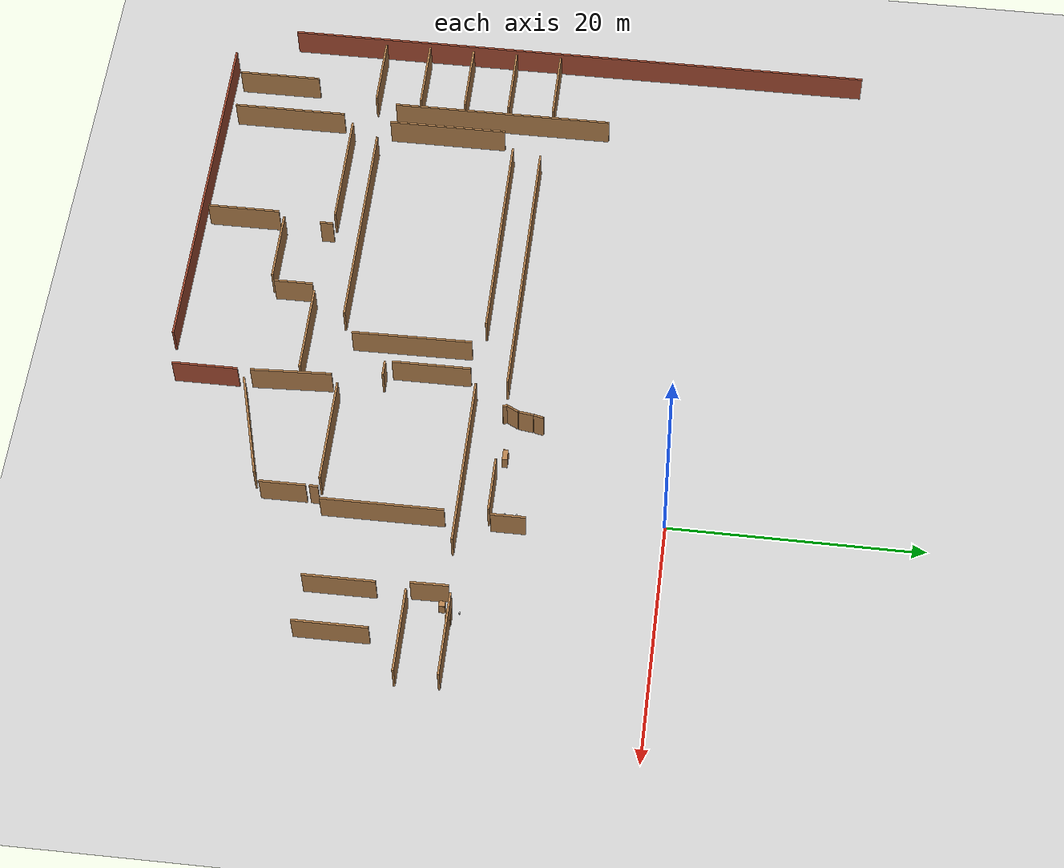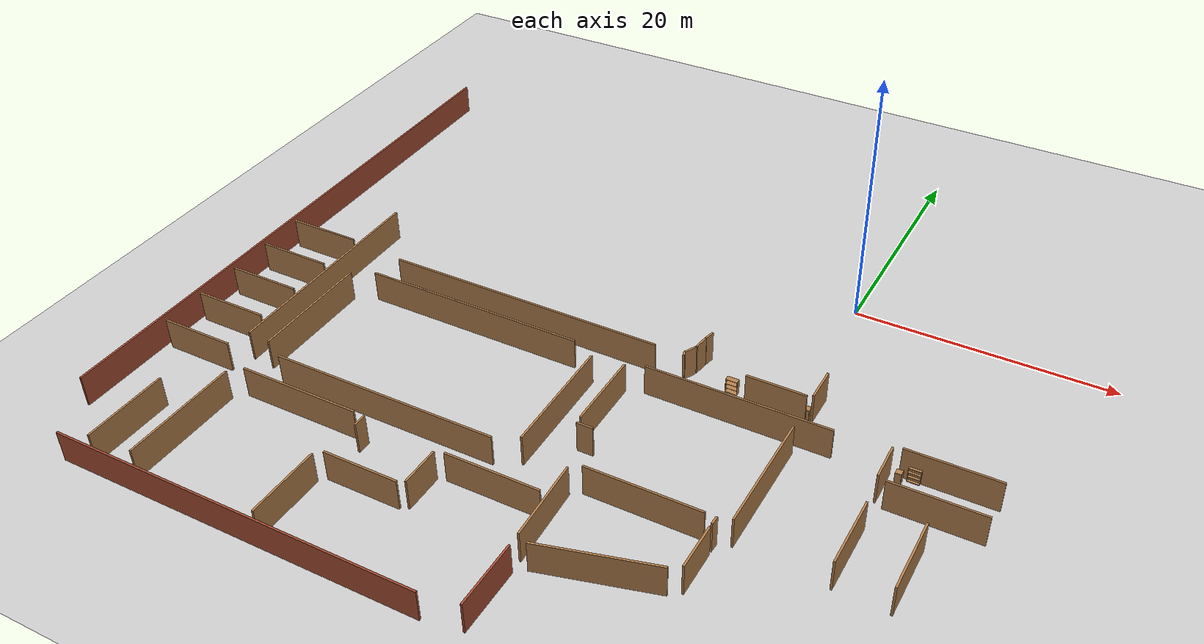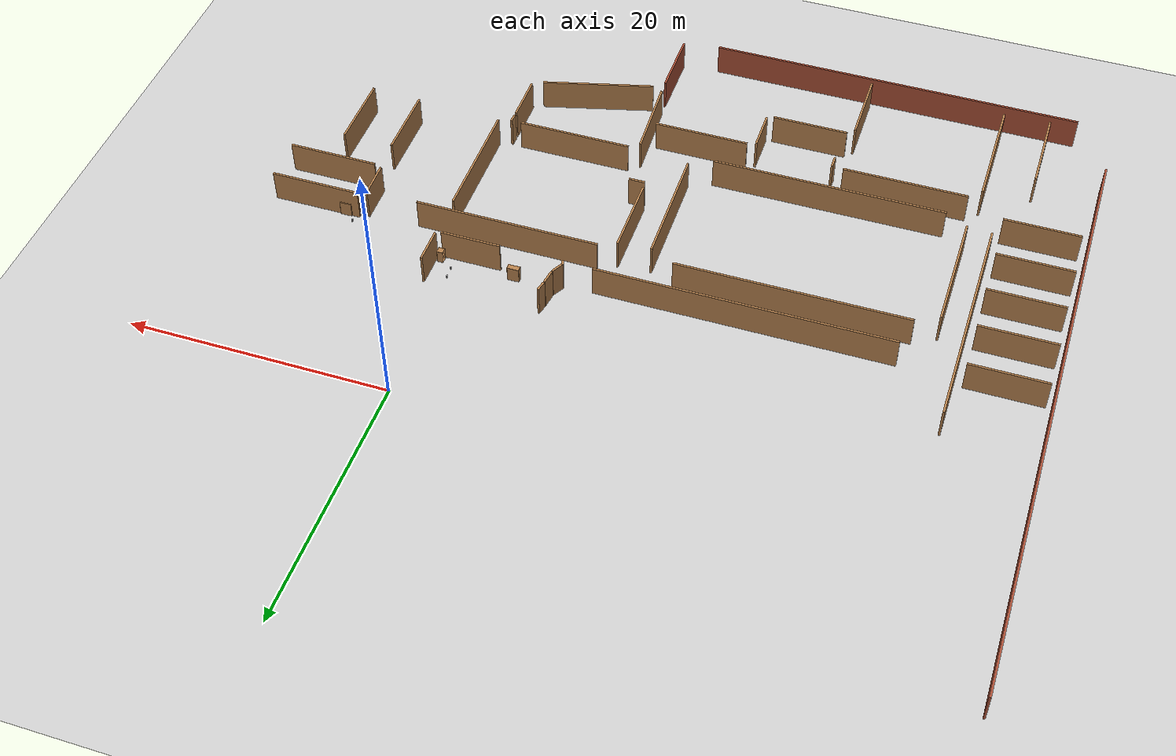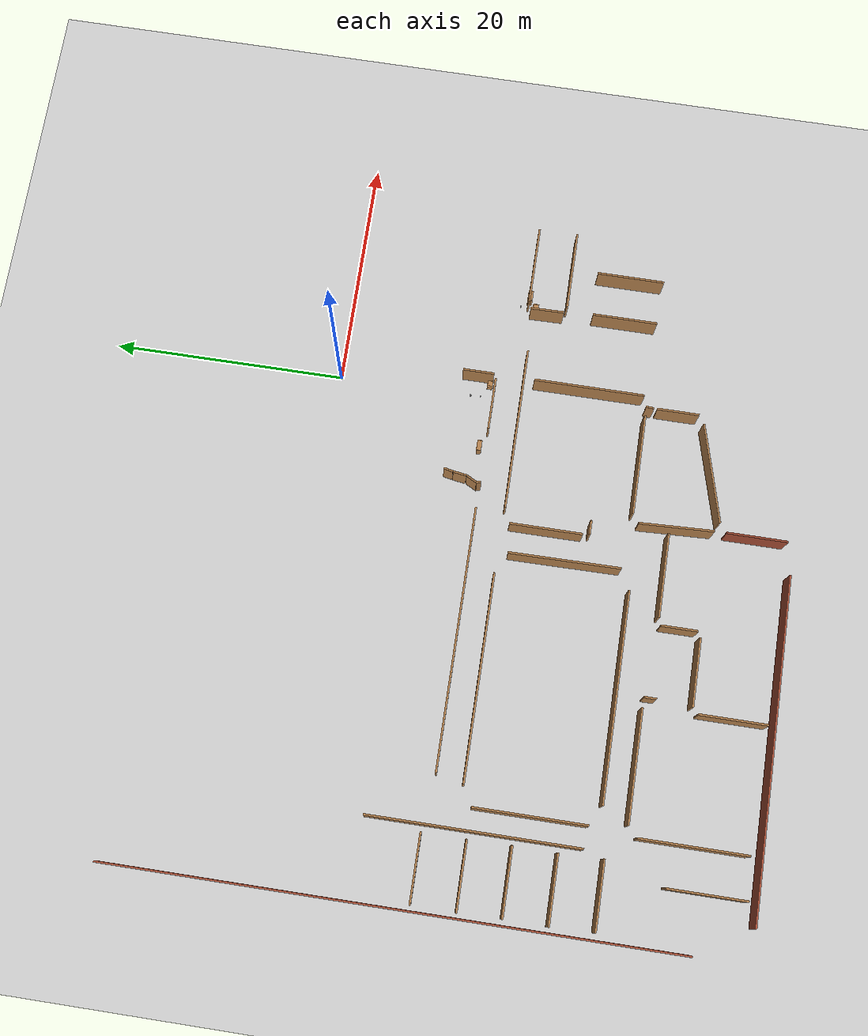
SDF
<sdf version="1.6">
 <world name="default">
  <model name="ground_plane">
   <static>1</static>
   <link name="link">
    <collision name="collision">
     <geometry><plane><normal>0 0 1</normal><size>100 100</size></plane></geometry>
     <surface><friction><ode><mu>100</mu><mu2>50</mu2></ode></friction></surface>
    </collision>
    <visual name="visual">
     <cast_shadows>0</cast_shadows>
     <geometry><plane><normal>0 0 1</normal><size>100 100</size></plane></geometry>
     <material>
      <script><uri>file://media/materials/scripts/gazebo.material</uri><name>Gazebo/Grey</name></script>
     </material>
    </visual>
   </link>
  </model>
  <model name="floorPlan">
   <pose>6.7155 -5.3556 0 0 -0 0</pose>
   <link name="Wall_127">
    <collision name="Wall_127_Collision">
     <geometry><box><size>9.58 0.15 2.5</size></box></geometry>
     <pose>0 0 1.25 0 -0 0</pose>
    </collision>
    <visual name="Wall_127_Visual">
     <pose>0 0 1.25 0 -0 0</pose>
     <geometry><box><size>9.58 0.15 2.5</size></box></geometry>
     <material>
      <script><uri>file://media/materials/scripts/gazebo.material</uri><name>Gazebo/Wood</name></script>
      <ambient>1 1 1 1</ambient>
     </material>
     <meta><layer>0</layer></meta>
    </visual>
    <pose>-5.05877 -16.1593 0 0 0 -1.5708</pose>
   </link>
   <link name="Wall_129">
    <collision name="Wall_129_Collision">
     <geometry><box><size>14.16 0.15 2.5</size></box></geometry>
     <pose>0 0 1.25 0 -0 0</pose>
    </collision>
    <visual name="Wall_129_Visual">
     <pose>0 0 1.25 0 -0 0</pose>
     <geometry><box><size>14.16 0.15 2.5</size></box></geometry>
     <material>
      <script><uri>file://media/materials/scripts/gazebo.material</uri><name>Gazebo/Wood</name></script>
      <ambient>1 1 1 1</ambient>
     </material>
     <meta><layer>0</layer></meta>
    </visual>
    <pose>-9.61757 -10.458 0 0 -0 3.14159</pose>
   </link>
   <link name="Wall_130">
    <collision name="Wall_130_Collision">
     <geometry><box><size>6.25 0.15 2.5</size></box></geometry>
     <pose>0 0 1.25 0 -0 0</pose>
    </collision>
    <visual name="Wall_130_Visual">
     <pose>0 0 1.25 0 -0 0</pose>
     <geometry><box><size>6.25 0.15 2.5</size></box></geometry>
     <material>
      <script><uri>file://media/materials/scripts/gazebo.material</uri><name>Gazebo/Wood</name></script>
      <ambient>1 1 1 1</ambient>
     </material>
     <meta><layer>0</layer></meta>
    </visual>
    <pose>-18.0426 -14.133 0 0 0 -1.5708</pose>
   </link>
   <link name="Wall_131">
    <collision name="Wall_131_Collision">
     <geometry><box><size>1.25 0.15 2.5</size></box></geometry>
     <pose>0 0 1.25 0 -0 0</pose>
    </collision>
    <visual name="Wall_131_Visual">
     <pose>0 0 1.25 0 -0 0</pose>
     <geometry><box><size>1.25 0.15 2.5</size></box></geometry>
     <material>
      <script><uri>file://media/materials/scripts/gazebo.material</uri><name>Gazebo/Wood</name></script>
      <ambient>1 1 1 1</ambient>
     </material>
     <meta><layer>0</layer></meta>
    </visual>
    <pose>-17.3676 -17.808 0 0 -0 0</pose>
   </link>
   <link name="Wall_133">
    <collision name="Wall_133_Collision">
     <geometry><box><size>8.75 0.15 2.5</size></box></geometry>
     <pose>0 0 1.25 0 -0 0</pose>
    </collision>
    <visual name="Wall_133_Visual">
     <pose>0 0 1.25 0 -0 0</pose>
     <geometry><box><size>8.75 0.15 2.5</size></box></geometry>
     <material>
      <script><uri>file://media/materials/scripts/gazebo.material</uri><name>Gazebo/Wood</name></script>
      <ambient>1 1 1 1</ambient>
     </material>
     <meta><layer>0</layer></meta>
    </visual>
    <pose>-11.2193 -21.215 0 0 -0 0</pose>
   </link>
   <link name="Wall_134">
    <collision name="Wall_134_Collision">
     <geometry><box><size>0.69 0.15 2.5</size></box></geometry>
     <pose>0 0 1.25 0 -0 0</pose>
    </collision>
    <visual name="Wall_134_Visual">
     <pose>0 0 1.25 0 -0 0</pose>
     <geometry><box><size>0.69 0.15 2.5</size></box></geometry>
     <material>
      <script><uri>file://media/materials/scripts/gazebo.material</uri><name>Gazebo/Wood</name></script>
      <ambient>1 1 1 1</ambient>
     </material>
     <meta><layer>0</layer></meta>
    </visual>
    <pose>-6.06127 -21.5509 0 0 0 -1.62113</pose>
   </link>
   <link name="Wall_137">
    <collision name="Wall_137_Collision">
     <geometry><box><size>6.42 0.15 2.5</size></box></geometry>
     <pose>0 0 1.25 0 -0 0</pose>
    </collision>
    <visual name="Wall_137_Visual">
     <pose>0 0 1.25 0 -0 0</pose>
     <geometry><box><size>6.42 0.15 2.5</size></box></geometry>
     <material>
      <script><uri>file://media/materials/scripts/gazebo.material</uri><name>Gazebo/Wood</name></script>
      <ambient>1 1 1 1</ambient>
     </material>
     <meta><layer>0</layer></meta>
    </visual>
    <pose>-16.2349 -24.9897 0 0 0 -1.52859</pose>
   </link>
   <link name="Wall_139">
    <collision name="Wall_139_Collision">
     <geometry><box><size>7.29 0.15 2.5</size></box></geometry>
     <pose>0 0 1.25 0 -0 0</pose>
    </collision>
    <visual name="Wall_139_Visual">
     <pose>0 0 1.25 0 -0 0</pose>
     <geometry><box><size>7.29 0.15 2.5</size></box></geometry>
     <material>
      <script><uri>file://media/materials/scripts/gazebo.material</uri><name>Gazebo/Wood</name></script>
      <ambient>1 1 1 1</ambient>
     </material>
     <meta><layer>0</layer></meta>
    </visual>
    <pose>-20.4877 -24.4086 0 0 -0 3.14159</pose>
   </link>
   <link name="Wall_140">
    <collision name="Wall_140_Collision">
     <geometry><box><size>3.12 0.15 2.5</size></box></geometry>
     <pose>0 0 1.25 0 -0 0</pose>
    </collision>
    <visual name="Wall_140_Visual">
     <pose>0 0 1.25 0 -0 0</pose>
     <geometry><box><size>3.12 0.15 2.5</size></box></geometry>
     <material>
      <script><uri>file://media/materials/scripts/gazebo.material</uri><name>Gazebo/Wood</name></script>
      <ambient>1 1 1 1</ambient>
     </material>
     <meta><layer>0</layer></meta>
    </visual>
    <pose>-24.7877 -26.2086 0 0 0 -1.5708</pose>
   </link>
   <link name="Wall_141">
    <collision name="Wall_141_Collision">
     <geometry><box><size>5.83 0.15 2.5</size></box></geometry>
     <pose>0 0 1.25 0 -0 0</pose>
    </collision>
    <visual name="Wall_141_Visual">
     <pose>0 0 1.25 0 -0 0</pose>
     <geometry><box><size>5.83 0.15 2.5</size></box></geometry>
     <material>
      <script><uri>file://media/materials/scripts/gazebo.material</uri><name>Gazebo/Wood</name></script>
      <ambient>1 1 1 1</ambient>
     </material>
     <meta><layer>0</layer></meta>
    </visual>
    <pose>-28.2127 -28.0086 0 0 -0 3.14159</pose>
   </link>
   <link name="Wall_142">
    <collision name="Wall_142_Collision">
     <geometry><box><size>5.83 0.15 2.5</size></box></geometry>
     <pose>0 0 1.25 0 -0 0</pose>
    </collision>
    <visual name="Wall_142_Visual">
     <pose>0 0 1.25 0 -0 0</pose>
     <geometry><box><size>5.83 0.15 2.5</size></box></geometry>
     <material>
      <script><uri>file://media/materials/scripts/gazebo.material</uri><name>Gazebo/Wood</name></script>
      <ambient>1 1 1 1</ambient>
     </material>
     <meta><layer>0</layer></meta>
    </visual>
    <pose>-31.6377 -31.4336 0 0 0 -1.5708</pose>
   </link>
   <link name="Wall_144">
    <collision name="Wall_144_Collision">
     <geometry><box><size>1.04 0.15 2.5</size></box></geometry>
     <pose>0 0 1.25 0 -0 0</pose>
    </collision>
    <visual name="Wall_144_Visual">
     <pose>0 0 1.25 0 -0 0</pose>
     <geometry><box><size>1.04 0.15 2.5</size></box></geometry>
     <material>
      <script><uri>file://media/materials/scripts/gazebo.material</uri><name>Gazebo/Wood</name></script>
      <ambient>1 1 1 1</ambient>
     </material>
     <meta><layer>0</layer></meta>
    </visual>
    <pose>-30.9008 -24.4847 0 0 -0 1.5708</pose>
   </link>
   <link name="Wall_146">
    <collision name="Wall_146_Collision">
     <geometry><box><size>9.58 0.15 2.5</size></box></geometry>
     <pose>0 0 1.25 0 -0 0</pose>
    </collision>
    <visual name="Wall_146_Visual">
     <pose>0 0 1.25 0 -0 0</pose>
     <geometry><box><size>9.58 0.15 2.5</size></box></geometry>
     <material>
      <script><uri>file://media/materials/scripts/gazebo.material</uri><name>Gazebo/Wood</name></script>
      <ambient>1 1 1 1</ambient>
     </material>
     <meta><layer>0</layer></meta>
    </visual>
    <pose>-36.5758 -23.9347 0 0 -0 3.14159</pose>
   </link>
   <link name="Wall_147">
    <collision name="Wall_147_Collision">
     <geometry><box><size>9.16 0.15 2.5</size></box></geometry>
     <pose>0 0 1.25 0 -0 0</pose>
    </collision>
    <visual name="Wall_147_Visual">
     <pose>0 0 1.25 0 -0 0</pose>
     <geometry><box><size>9.16 0.15 2.5</size></box></geometry>
     <material>
      <script><uri>file://media/materials/scripts/gazebo.material</uri><name>Gazebo/Wood</name></script>
      <ambient>1 1 1 1</ambient>
     </material>
     <meta><layer>0</layer></meta>
    </visual>
    <pose>-42.2508 -29.3597 0 0 0 -1.5708</pose>
   </link>
   <link name="Wall_149">
    <collision name="Wall_149_Collision">
     <geometry><box><size>6.66 0.15 2.5</size></box></geometry>
     <pose>0 0 1.25 0 -0 0</pose>
    </collision>
    <visual name="Wall_149_Visual">
     <pose>0 0 1.25 0 -0 0</pose>
     <geometry><box><size>6.66 0.15 2.5</size></box></geometry>
     <material>
      <script><uri>file://media/materials/scripts/gazebo.material</uri><name>Gazebo/Wood</name></script>
      <ambient>1 1 1 1</ambient>
     </material>
     <meta><layer>0</layer></meta>
    </visual>
    <pose>-45.7877 -30.8032 0 0 0 -1.5708</pose>
   </link>
   <link name="Wall_151">
    <collision name="Wall_151_Collision">
     <geometry><box><size>5.83 0.15 2.5</size></box></geometry>
     <pose>0 0 1.25 0 -0 0</pose>
    </collision>
    <visual name="Wall_151_Visual">
     <pose>0 0 1.25 0 -0 0</pose>
     <geometry><box><size>5.83 0.15 2.5</size></box></geometry>
     <material>
      <script><uri>file://media/materials/scripts/gazebo.material</uri><name>Gazebo/Wood</name></script>
      <ambient>1 1 1 1</ambient>
     </material>
     <meta><layer>0</layer></meta>
    </visual>
    <pose>-47.1627 -22.3564 0 0 -0 0</pose>
   </link>
   <link name="Wall_152">
    <collision name="Wall_152_Collision">
     <geometry><box><size>17.91 0.15 2.5</size></box></geometry>
     <pose>0 0 1.25 0 -0 0</pose>
    </collision>
    <visual name="Wall_152_Visual">
     <pose>0 0 1.25 0 -0 0</pose>
     <geometry><box><size>17.91 0.15 2.5</size></box></geometry>
     <material>
      <script><uri>file://media/materials/scripts/gazebo.material</uri><name>Gazebo/Wood</name></script>
      <ambient>1 1 1 1</ambient>
     </material>
     <meta><layer>0</layer></meta>
    </visual>
    <pose>-43.7377 -11.6814 0 0 -0 1.5708</pose>
   </link>
   <link name="Wall_154">
    <collision name="Wall_154_Collision">
     <geometry><box><size>9.58 0.15 2.5</size></box></geometry>
     <pose>0 0 1.25 0 -0 0</pose>
    </collision>
    <visual name="Wall_154_Visual">
     <pose>0 0 1.25 0 -0 0</pose>
     <geometry><box><size>9.58 0.15 2.5</size></box></geometry>
     <material>
      <script><uri>file://media/materials/scripts/gazebo.material</uri><name>Gazebo/Wood</name></script>
      <ambient>1 1 1 1</ambient>
     </material>
     <meta><layer>0</layer></meta>
    </visual>
    <pose>-20.5182 -16.0314 0 0 0 -1.5616</pose>
   </link>
   <link name="Wall_155">
    <collision name="Wall_155_Collision">
     <geometry><box><size>17.91 0.15 2.5</size></box></geometry>
     <pose>0 0 1.25 0 -0 0</pose>
    </collision>
    <visual name="Wall_155_Visual">
     <pose>0 0 1.25 0 -0 0</pose>
     <geometry><box><size>17.91 0.15 2.5</size></box></geometry>
     <material>
      <script><uri>file://media/materials/scripts/gazebo.material</uri><name>Gazebo/Wood</name></script>
      <ambient>1 1 1 1</ambient>
     </material>
     <meta><layer>0</layer></meta>
    </visual>
    <pose>-31.1758 -21.7064 0 0 -0 3.14159</pose>
   </link>
   <link name="Wall_158">
    <collision name="Wall_158_Collision">
     <geometry><box><size>9.58 0.15 2.5</size></box></geometry>
     <pose>0 0 1.25 0 -0 0</pose>
    </collision>
    <visual name="Wall_158_Visual">
     <pose>0 0 1.25 0 -0 0</pose>
     <geometry><box><size>9.58 0.15 2.5</size></box></geometry>
     <material>
      <script><uri>file://media/materials/scripts/gazebo.material</uri><name>Gazebo/Wood</name></script>
      <ambient>1 1 1 1</ambient>
     </material>
     <meta><layer>0</layer></meta>
    </visual>
    <pose>-41.8508 -16.0314 0 0 -0 1.5708</pose>
   </link>
   <link name="Wall_159">
    <collision name="Wall_159_Collision">
     <geometry><box><size>17.7 0.15 2.5</size></box></geometry>
     <pose>0 0 1.25 0 -0 0</pose>
    </collision>
    <visual name="Wall_159_Visual">
     <pose>0 0 1.25 0 -0 0</pose>
     <geometry><box><size>17.7 0.15 2.5</size></box></geometry>
     <material>
      <script><uri>file://media/materials/scripts/gazebo.material</uri><name>Gazebo/Wood</name></script>
      <ambient>1 1 1 1</ambient>
     </material>
     <meta><layer>0</layer></meta>
    </visual>
    <pose>-31.3008 -10.3564 0 0 -0 0</pose>
   </link>
   <link name="Wall_163">
    <collision name="Wall_163_Collision">
     <geometry><box><size>4.58 0.15 2.5</size></box></geometry>
     <pose>0 0 1.25 0 -0 0</pose>
    </collision>
    <visual name="Wall_163_Visual">
     <pose>0 0 1.25 0 -0 0</pose>
     <geometry><box><size>4.58 0.15 2.5</size></box></geometry>
     <material>
      <script><uri>file://media/materials/scripts/gazebo.material</uri><name>Gazebo/Wood</name></script>
      <ambient>1 1 1 1</ambient>
     </material>
     <meta><layer>0</layer></meta>
    </visual>
    <pose>-7.72942 -8.04986 0 0 -0 0</pose>
   </link>
   <link name="Wall_164">
    <collision name="Wall_164_Collision">
     <geometry><box><size>2.71 0.15 2.5</size></box></geometry>
     <pose>0 0 1.25 0 -0 0</pose>
    </collision>
    <visual name="Wall_164_Visual">
     <pose>0 0 1.25 0 -0 0</pose>
     <geometry><box><size>2.71 0.15 2.5</size></box></geometry>
     <material>
      <script><uri>file://media/materials/scripts/gazebo.material</uri><name>Gazebo/Wood</name></script>
      <ambient>1 1 1 1</ambient>
     </material>
     <meta><layer>0</layer></meta>
    </visual>
    <pose>-5.05442 -6.49986 0 0 -0 1.5708</pose>
   </link>
   <link name="Wall_182">
    <collision name="Wall_182_Collision">
     <geometry><box><size>22.49 0.15 2.5</size></box></geometry>
     <pose>0 0 1.25 0 -0 0</pose>
    </collision>
    <visual name="Wall_182_Visual">
     <pose>0 0 1.25 0 -0 0</pose>
     <geometry><box><size>22.49 0.15 2.5</size></box></geometry>
     <material>
      <script><uri>file://media/materials/scripts/gazebo.material</uri><name>Gazebo/Wood</name></script>
      <ambient>1 1 1 1</ambient>
     </material>
     <meta><layer>0</layer></meta>
    </visual>
    <pose>-28.3707 -8.0129 0 0 -0 3.14159</pose>
   </link>
   <link name="Wall_192">
    <collision name="Wall_192_Collision">
     <geometry><box><size>0.81 0.15 2.5</size></box></geometry>
     <pose>0 0 1.25 0 -0 0</pose>
    </collision>
    <visual name="Wall_192_Visual">
     <pose>0 0 1.25 0 -0 0</pose>
     <geometry><box><size>0.81 0.15 2.5</size></box></geometry>
     <material>
      <script><uri>file://media/materials/scripts/gazebo.material</uri><name>Gazebo/Wood</name></script>
      <ambient>1 1 1 1</ambient>
     </material>
     <meta><layer>0</layer></meta>
    </visual>
    <pose>-14.1979 -5.2129 0 0 0 -1.78486</pose>
   </link>
   <link name="Wall_193">
    <collision name="Wall_193_Collision">
     <geometry><box><size>1.15 0.15 2.5</size></box></geometry>
     <pose>0 0 1.25 0 -0 0</pose>
    </collision>
    <visual name="Wall_193_Visual">
     <pose>0 0 1.25 0 -0 0</pose>
     <geometry><box><size>1.15 0.15 2.5</size></box></geometry>
     <material>
      <script><uri>file://media/materials/scripts/gazebo.material</uri><name>Gazebo/Wood</name></script>
      <ambient>1 1 1 1</ambient>
     </material>
     <meta><layer>0</layer></meta>
    </visual>
    <pose>-14.3718 -6.2216 0 0 0 -1.71269</pose>
   </link>
   <link name="Wall_194">
    <collision name="Wall_194_Collision">
     <geometry><box><size>1.01 0.15 2.5</size></box></geometry>
     <pose>0 0 1.25 0 -0 0</pose>
    </collision>
    <visual name="Wall_194_Visual">
     <pose>0 0 1.25 0 -0 0</pose>
     <geometry><box><size>1.01 0.15 2.5</size></box></geometry>
     <material>
      <script><uri>file://media/materials/scripts/gazebo.material</uri><name>Gazebo/Wood</name></script>
      <ambient>1 1 1 1</ambient>
     </material>
     <meta><layer>0</layer></meta>
    </visual>
    <pose>-14.7022 -7.29986 0 0 0 -2.04915</pose>
   </link>
   <link name="Wall_195">
    <collision name="Wall_195_Collision">
     <geometry><box><size>0.4 0.15 2.5</size></box></geometry>
     <pose>0 0 1.25 0 -0 0</pose>
    </collision>
    <visual name="Wall_195_Visual">
     <pose>0 0 1.25 0 -0 0</pose>
     <geometry><box><size>0.4 0.15 2.5</size></box></geometry>
     <material>
      <script><uri>file://media/materials/scripts/gazebo.material</uri><name>Gazebo/Wood</name></script>
      <ambient>1 1 1 1</ambient>
     </material>
     <meta><layer>0</layer></meta>
    </visual>
    <pose>-14.8935 -7.92595 0 0 0 -1.24905</pose>
   </link>
   <link name="Wall_229">
    <collision name="Wall_229_Collision">
     <geometry><box><size>5.62 0.15 2.5</size></box></geometry>
     <pose>0 0 1.25 0 -0 0</pose>
    </collision>
    <visual name="Wall_229_Visual">
     <pose>0 0 1.25 0 -0 0</pose>
     <geometry><box><size>5.62 0.15 2.5</size></box></geometry>
     <material>
      <script><uri>file://media/materials/scripts/gazebo.material</uri><name>Gazebo/Wood</name></script>
      <ambient>1 1 1 1</ambient>
     </material>
     <meta><layer>0</layer></meta>
    </visual>
    <pose>1.67781 -18.4351 0 0 0 -1.5708</pose>
   </link>
   <link name="Wall_234">
    <collision name="Wall_234_Collision">
     <geometry><box><size>2.92 0.15 2.5</size></box></geometry>
     <pose>0 0 1.25 0 -0 0</pose>
    </collision>
    <visual name="Wall_234_Visual">
     <pose>0 0 1.25 0 -0 0</pose>
     <geometry><box><size>2.92 0.15 2.5</size></box></geometry>
     <material>
      <script><uri>file://media/materials/scripts/gazebo.material</uri><name>Gazebo/Wood</name></script>
      <ambient>1 1 1 1</ambient>
     </material>
     <meta><layer>0</layer></meta>
    </visual>
    <pose>1.44911 -11.6186 0 0 0 -1.55714</pose>
   </link>
   <link name="Wall_235">
    <collision name="Wall_235_Collision">
     <geometry><box><size>6.87 0.15 2.5</size></box></geometry>
     <pose>0 0 1.25 0 -0 0</pose>
    </collision>
    <visual name="Wall_235_Visual">
     <pose>0 0 1.25 0 -0 0</pose>
     <geometry><box><size>6.87 0.15 2.5</size></box></geometry>
     <material>
      <script><uri>file://media/materials/scripts/gazebo.material</uri><name>Gazebo/Wood</name></script>
      <ambient>1 1 1 1</ambient>
     </material>
     <meta><layer>0</layer></meta>
    </visual>
    <pose>5.49911 -13.2936 0 0 -0 0</pose>
   </link>
   <link name="Wall_240">
    <collision name="Wall_240_Collision">
     <geometry><box><size>6.87 0.15 2.5</size></box></geometry>
     <pose>0 0 1.25 0 -0 0</pose>
    </collision>
    <visual name="Wall_240_Visual">
     <pose>0 0 1.25 0 -0 0</pose>
     <geometry><box><size>6.87 0.15 2.5</size></box></geometry>
     <material>
      <script><uri>file://media/materials/scripts/gazebo.material</uri><name>Gazebo/Wood</name></script>
      <ambient>1 1 1 1</ambient>
     </material>
     <meta><layer>0</layer></meta>
    </visual>
    <pose>5.47624 -9.94362 0 0 -0 0</pose>
   </link>
   <link name="Wall_253">
    <collision name="Wall_253_Collision">
     <geometry><box><size>5.83 0.15 2.5</size></box></geometry>
     <pose>0 0 1.25 0 -0 0</pose>
    </collision>
    <visual name="Wall_253_Visual">
     <pose>0 0 1.25 0 -0 0</pose>
     <geometry><box><size>5.83 0.15 2.5</size></box></geometry>
     <material>
      <script><uri>file://media/materials/scripts/gazebo.material</uri><name>Gazebo/Wood</name></script>
      <ambient>1 1 1 1</ambient>
     </material>
     <meta><layer>0</layer></meta>
    </visual>
    <pose>-47.3107 -7.5117 0 0 -0 0</pose>
   </link>
   <link name="Wall_255">
    <collision name="Wall_255_Collision">
     <geometry><box><size>5.83 0.15 2.5</size></box></geometry>
     <pose>0 0 1.25 0 -0 0</pose>
    </collision>
    <visual name="Wall_255_Visual">
     <pose>0 0 1.25 0 -0 0</pose>
     <geometry><box><size>5.83 0.15 2.5</size></box></geometry>
     <material>
      <script><uri>file://media/materials/scripts/gazebo.material</uri><name>Gazebo/Wood</name></script>
      <ambient>1 1 1 1</ambient>
     </material>
     <meta><layer>0</layer></meta>
    </visual>
    <pose>-47.3107 -11.2546 0 0 -0 0</pose>
   </link>
   <link name="Wall_257">
    <collision name="Wall_257_Collision">
     <geometry><box><size>5.83 0.15 2.5</size></box></geometry>
     <pose>0 0 1.25 0 -0 0</pose>
    </collision>
    <visual name="Wall_257_Visual">
     <pose>0 0 1.25 0 -0 0</pose>
     <geometry><box><size>5.83 0.15 2.5</size></box></geometry>
     <material>
      <script><uri>file://media/materials/scripts/gazebo.material</uri><name>Gazebo/Wood</name></script>
      <ambient>1 1 1 1</ambient>
     </material>
     <meta><layer>0</layer></meta>
    </visual>
    <pose>-47.2408 -14.9275 0 0 -0 0</pose>
   </link>
   <link name="Wall_259">
    <collision name="Wall_259_Collision">
     <geometry><box><size>5.83 0.15 2.5</size></box></geometry>
     <pose>0 0 1.25 0 -0 0</pose>
    </collision>
    <visual name="Wall_259_Visual">
     <pose>0 0 1.25 0 -0 0</pose>
     <geometry><box><size>5.83 0.15 2.5</size></box></geometry>
     <material>
      <script><uri>file://media/materials/scripts/gazebo.material</uri><name>Gazebo/Wood</name></script>
      <ambient>1 1 1 1</ambient>
     </material>
     <meta><layer>0</layer></meta>
    </visual>
    <pose>-47.2758 -18.6354 0 0 -0 0</pose>
   </link>
   <link name="Wall_265">
    <collision name="Wall_265_Collision">
     <geometry><box><size>5.83 0.15 2.5</size></box></geometry>
     <pose>0 0 1.25 0 -0 0</pose>
    </collision>
    <visual name="Wall_265_Visual">
     <pose>0 0 1.25 0 -0 0</pose>
     <geometry><box><size>5.83 0.15 2.5</size></box></geometry>
     <material>
      <script><uri>file://media/materials/scripts/gazebo.material</uri><name>Gazebo/Wood</name></script>
      <ambient>1 1 1 1</ambient>
     </material>
     <meta><layer>0</layer></meta>
    </visual>
    <pose>5.58226 -18.4924 0 0 0 -1.5708</pose>
   </link>
   <link name="Wall_92">
    <collision name="Wall_92_Collision">
     <geometry><box><size>3.62 0.15 2.5</size></box></geometry>
     <pose>0 0 1.25 0 -0 0</pose>
    </collision>
    <visual name="Wall_92_Visual">
     <pose>0 0 1.25 0 -0 0</pose>
     <geometry><box><size>3.62 0.15 2.5</size></box></geometry>
     <material>
      <script><uri>file://media/materials/scripts/gazebo.material</uri><name>Gazebo/Wood</name></script>
      <ambient>1 1 1 1</ambient>
     </material>
     <meta><layer>0</layer></meta>
    </visual>
    <pose>-6.0782 -23.9862 0 0 0 -1.5708</pose>
   </link>
   <link name="Wall_93">
    <collision name="Wall_93_Collision">
     <geometry><box><size>8.75 0.15 2.5</size></box></geometry>
     <pose>0 0 1.25 0 -0 0</pose>
    </collision>
    <visual name="Wall_93_Visual">
     <pose>0 0 1.25 0 -0 0</pose>
     <geometry><box><size>8.75 0.15 2.5</size></box></geometry>
     <material>
      <script><uri>file://media/materials/scripts/gazebo.material</uri><name>Gazebo/Wood</name></script>
      <ambient>1 1 1 1</ambient>
     </material>
     <meta><layer>0</layer></meta>
    </visual>
    <pose>-11.0769 -27.425 0 0 0 -2.87979</pose>
   </link>
   <link name="Wall_95">
    <collision name="Wall_95_Collision">
     <geometry><box><size>5.21 0.15 2.5</size></box></geometry>
     <pose>0 0 1.25 0 -0 0</pose>
    </collision>
    <visual name="Wall_95_Visual">
     <pose>0 0 1.25 0 -0 0</pose>
     <geometry><box><size>5.21 0.15 2.5</size></box></geometry>
     <material>
      <script><uri>file://media/materials/scripts/gazebo.material</uri><name>Gazebo/Bricks</name></script>
      <ambient>1 1 1 1</ambient>
     </material>
     <meta><layer>0</layer></meta>
    </visual>
    <pose>-16.0755 -31.8144 0 0 0 -1.5708</pose>
   </link>
   <link name="Wall_97">
    <collision name="Wall_97_Collision">
     <geometry><box><size>28.95 0.15 2.5</size></box></geometry>
     <pose>0 0 1.25 0 -0 0</pose>
    </collision>
    <visual name="Wall_97_Visual">
     <pose>0 0 1.25 0 -0 0</pose>
     <geometry><box><size>28.95 0.15 2.5</size></box></geometry>
     <material>
      <script><uri>file://media/materials/scripts/gazebo.material</uri><name>Gazebo/Bricks</name></script>
      <ambient>1 1 1 1</ambient>
     </material>
     <meta><layer>0</layer></meta>
    </visual>
    <pose>-33.3755 -34.8644 0 0 -0 3.14159</pose>
   </link>
   <link name="Wall_99">
    <collision name="Wall_99_Collision">
     <geometry><box><size>48.11 0.15 2.5</size></box></geometry>
     <pose>0 0 1.25 0 -0 0</pose>
    </collision>
    <visual name="Wall_99_Visual">
     <pose>0 0 1.25 0 -0 0</pose>
     <geometry><box><size>48.11 0.15 2.5</size></box></geometry>
     <material>
      <script><uri>file://media/materials/scripts/gazebo.material</uri><name>Gazebo/Bricks</name></script>
      <ambient>1 1 1 1</ambient>
     </material>
     <meta><layer>0</layer></meta>
    </visual>
    <pose>-50.6755 -6.06439 0 0 -0 1.5708</pose>
   </link>
   <static>1</static>
  </model>
  <model name="bookshelf_9">
   <static>1</static>
   <link name="link">
    <inertial><mass>1</mass></inertial>
    <collision name="back">
     <pose>0 0.005 0.6 0 -0 0</pose>
     <geometry><box><size>0.9 0.01 1.2</size></box></geometry>
    </collision>
    <visual name="visual1">
     <pose>0 0.005 0.6 0 -0 0</pose>
     <geometry><box><size>0.9 0.01 1.2</size></box></geometry>
     <material>
      <script><uri>file://media/materials/scripts/gazebo.material</uri><name>Gazebo/Wood</name></script>
     </material>
    </visual>
    <collision name="left_side">
     <pose>0.45 -0.195 0.6 0 -0 0</pose>
     <geometry><box><size>0.02 0.4 1.2</size></box></geometry>
    </collision>
    <visual name="visual2">
     <pose>0.45 -0.195 0.6 0 -0 0</pose>
     <geometry><box><size>0.02 0.4 1.2</size></box></geometry>
     <material>
      <script><uri>file://media/materials/scripts/gazebo.material</uri><name>Gazebo/Wood</name></script>
     </material>
    </visual>
    <collision name="right_side">
     <pose>-0.45 -0.195 0.6 0 -0 0</pose>
     <geometry><box><size>0.02 0.4 1.2</size></box></geometry>
    </collision>
    <visual name="visual3">
     <pose>-0.45 -0.195 0.6 0 -0 0</pose>
     <geometry><box><size>0.02 0.4 1.2</size></box></geometry>
     <material>
      <script><uri>file://media/materials/scripts/gazebo.material</uri><name>Gazebo/Wood</name></script>
     </material>
    </visual>
    <collision name="bottom">
     <pose>0 -0.195 0.03 0 -0 0</pose>
     <geometry><box><size>0.88 0.4 0.06</size></box></geometry>
    </collision>
    <visual name="visual4">
     <pose>0 -0.195 0.03 0 -0 0</pose>
     <geometry><box><size>0.88 0.4 0.06</size></box></geometry>
     <material>
      <script><uri>file://media/materials/scripts/gazebo.material</uri><name>Gazebo/Wood</name></script>
     </material>
    </visual>
    <collision name="top">
     <pose>0 -0.195 1.19 0 -0 0</pose>
     <geometry><box><size>0.88 0.4 0.02</size></box></geometry>
    </collision>
    <visual name="visual5">
     <pose>0 -0.195 1.19 0 -0 0</pose>
     <geometry><box><size>0.88 0.4 0.02</size></box></geometry>
     <material>
      <script><uri>file://media/materials/scripts/gazebo.material</uri><name>Gazebo/Wood</name></script>
     </material>
    </visual>
    <collision name="low_shelf">
     <pose>0 -0.195 0.43 0 -0 0</pose>
     <geometry><box><size>0.88 0.4 0.02</size></box></geometry>
    </collision>
    <visual name="visual6">
     <pose>0 -0.195 0.43 0 -0 0</pose>
     <geometry><box><size>0.88 0.4 0.02</size></box></geometry>
     <material>
      <script><uri>file://media/materials/scripts/gazebo.material</uri><name>Gazebo/Wood</name></script>
     </material>
    </visual>
    <collision name="high_shelf">
     <pose>0 -0.195 0.8 0 -0 0</pose>
     <geometry><box><size>0.88 0.4 0.02</size></box></geometry>
    </collision>
    <visual name="visual7">
     <pose>0 -0.195 0.8 0 -0 0</pose>
     <geometry><box><size>0.88 0.4 0.02</size></box></geometry>
     <material>
      <script><uri>file://media/materials/scripts/gazebo.material</uri><name>Gazebo/Wood</name></script>
     </material>
    </visual>
   </link>
   <pose>9.84029 -15.1681 0 0 -0 0</pose>
  </model>
  <model name="beer_8">
   <link name="link">
    <pose>0 0 0.115 0 -0 0</pose>
    <inertial>
     <mass>0.39</mass>
     <inertia><ixx>0.00058</ixx><ixy>0</ixy><ixz>0</ixz><iyy>0.00058</iyy><iyz>0</iyz><izz>0.00019</izz></inertia>
    </inertial>
    <collision name="collision">
     <geometry><cylinder><radius>0.055</radius><length>0.23</length></cylinder></geometry>
    </collision>
    <visual name="visual">
     <geometry><cylinder><radius>0.055</radius><length>0.23</length></cylinder></geometry>
     <material>
      <script>
       <uri>model://beer/materials/scripts</uri>
       <uri>model://beer/materials/textures</uri>
       <name>Beer/Diffuse</name>
      </script>
     </material>
    </visual>
   </link>
   <pose>9.12361 -14.6357 -7e-06 0 0 -2.7e-05</pose>
  </model>
  <model name="cabinet_5">
   <static>1</static>
   <link name="cabinet_bottom_plate">
    <inertial>
     <pose>0 0 -1 0 -0 0</pose>
     <inertia><ixx>2.05</ixx><ixy>0</ixy><ixz>0</ixz><iyy>2.05</iyy><iyz>0</iyz><izz>2.05</izz></inertia>
     <mass>25</mass>
    </inertial>
    <collision name="cabinet_bottom_plate_geom">
     <pose>0 0 0.01 0 -0 0</pose>
     <geometry><box><size>0.45 0.45 0.02</size></box></geometry>
    </collision>
    <visual name="cabinet_bottom_plate_geom_visual">
     <pose>0 0 0.01 0 -0 0</pose>
     <geometry><box><size>0.45 0.45 0.02</size></box></geometry>
     <material>
      <script><uri>file://media/materials/scripts/gazebo.material</uri><name>Gazebo/Wood</name></script>
     </material>
    </visual>
    <collision name="cabinet_bottom_plate_geom_cabinet_back_plate">
     <pose>0.235 0 0.51 0 -0 0</pose>
     <geometry><box><size>0.02 0.45 1.02</size></box></geometry>
    </collision>
    <visual name="cabinet_bottom_plate_geom_cabinet_back_plate_visual">
     <pose>0.235 0 0.51 0 -0 0</pose>
     <geometry><box><size>0.02 0.45 1.02</size></box></geometry>
     <material>
      <script><uri>file://media/materials/scripts/gazebo.material</uri><name>Gazebo/Wood</name></script>
     </material>
    </visual>
    <collision name="cabinet_bottom_plate_geom_cabinet_left_plate">
     <pose>0 0.235 0.51 0 -0 0</pose>
     <geometry><box><size>0.45 0.02 1.02</size></box></geometry>
    </collision>
    <visual name="cabinet_bottom_plate_geom_cabinet_left_plate_visual">
     <pose>0 0.235 0.51 0 -0 0</pose>
     <geometry><box><size>0.45 0.02 1.02</size></box></geometry>
     <material>
      <script><uri>file://media/materials/scripts/gazebo.material</uri><name>Gazebo/Wood</name></script>
     </material>
    </visual>
    <collision name="cabinet_bottom_plate_geom_cabinet_middle_plate">
     <pose>0 0 0.51 0 -0 0</pose>
     <geometry><box><size>0.45 0.45 0.02</size></box></geometry>
    </collision>
    <visual name="cabinet_bottom_plate_geom_cabinet_middle_plate_visual">
     <pose>0 0 0.51 0 -0 0</pose>
     <geometry><box><size>0.45 0.45 0.02</size></box></geometry>
     <material>
      <script><uri>file://media/materials/scripts/gazebo.material</uri><name>Gazebo/Wood</name></script>
     </material>
    </visual>
    <collision name="cabinet_bottom_plate_geom_cabinet_right_plate">
     <pose>0 -0.235 0.51 0 -0 0</pose>
     <geometry><box><size>0.45 0.02 1.02</size></box></geometry>
    </collision>
    <visual name="cabinet_bottom_plate_geom_cabinet_right_plate_visual">
     <pose>0 -0.235 0.51 0 -0 0</pose>
     <geometry><box><size>0.45 0.02 1.02</size></box></geometry>
     <material>
      <script><uri>file://media/materials/scripts/gazebo.material</uri><name>Gazebo/Wood</name></script>
     </material>
    </visual>
    <collision name="cabinet_bottom_plate_geom_cabinet_top_plate">
     <pose>0 0 1.01 0 -0 0</pose>
     <geometry><box><size>0.45 0.45 0.02</size></box></geometry>
    </collision>
    <visual name="cabinet_bottom_plate_geom_cabinet_top_plate_visual">
     <pose>0 0 1.01 0 -0 0</pose>
     <geometry><box><size>0.45 0.45 0.02</size></box></geometry>
     <material>
      <script><uri>file://media/materials/scripts/gazebo.material</uri><name>Gazebo/Wood</name></script>
     </material>
    </visual>
   </link>
   <pose>8.92697 -15.9695 0 0 -0 0</pose>
  </model>
  <model name="cabinet_7">
   <static>1</static>
   <link name="cabinet_bottom_plate">
    <inertial>
     <pose>0 0 -1 0 -0 0</pose>
     <inertia><ixx>2.05</ixx><ixy>0</ixy><ixz>0</ixz><iyy>2.05</iyy><iyz>0</iyz><izz>2.05</izz></inertia>
     <mass>25</mass>
    </inertial>
    <collision name="cabinet_bottom_plate_geom">
     <pose>0 0 0.01 0 -0 0</pose>
     <geometry><box><size>0.45 0.45 0.02</size></box></geometry>
    </collision>
    <visual name="cabinet_bottom_plate_geom_visual">
     <pose>0 0 0.01 0 -0 0</pose>
     <geometry><box><size>0.45 0.45 0.02</size></box></geometry>
     <material>
      <script><uri>file://media/materials/scripts/gazebo.material</uri><name>Gazebo/Wood</name></script>
     </material>
    </visual>
    <collision name="cabinet_bottom_plate_geom_cabinet_back_plate">
     <pose>0.235 0 0.51 0 -0 0</pose>
     <geometry><box><size>0.02 0.45 1.02</size></box></geometry>
    </collision>
    <visual name="cabinet_bottom_plate_geom_cabinet_back_plate_visual">
     <pose>0.235 0 0.51 0 -0 0</pose>
     <geometry><box><size>0.02 0.45 1.02</size></box></geometry>
     <material>
      <script><uri>file://media/materials/scripts/gazebo.material</uri><name>Gazebo/Wood</name></script>
     </material>
    </visual>
    <collision name="cabinet_bottom_plate_geom_cabinet_left_plate">
     <pose>0 0.235 0.51 0 -0 0</pose>
     <geometry><box><size>0.45 0.02 1.02</size></box></geometry>
    </collision>
    <visual name="cabinet_bottom_plate_geom_cabinet_left_plate_visual">
     <pose>0 0.235 0.51 0 -0 0</pose>
     <geometry><box><size>0.45 0.02 1.02</size></box></geometry>
     <material>
      <script><uri>file://media/materials/scripts/gazebo.material</uri><name>Gazebo/Wood</name></script>
     </material>
    </visual>
    <collision name="cabinet_bottom_plate_geom_cabinet_middle_plate">
     <pose>0 0 0.51 0 -0 0</pose>
     <geometry><box><size>0.45 0.45 0.02</size></box></geometry>
    </collision>
    <visual name="cabinet_bottom_plate_geom_cabinet_middle_plate_visual">
     <pose>0 0 0.51 0 -0 0</pose>
     <geometry><box><size>0.45 0.45 0.02</size></box></geometry>
     <material>
      <script><uri>file://media/materials/scripts/gazebo.material</uri><name>Gazebo/Wood</name></script>
     </material>
    </visual>
    <collision name="cabinet_bottom_plate_geom_cabinet_right_plate">
     <pose>0 -0.235 0.51 0 -0 0</pose>
     <geometry><box><size>0.45 0.02 1.02</size></box></geometry>
    </collision>
    <visual name="cabinet_bottom_plate_geom_cabinet_right_plate_visual">
     <pose>0 -0.235 0.51 0 -0 0</pose>
     <geometry><box><size>0.45 0.02 1.02</size></box></geometry>
     <material>
      <script><uri>file://media/materials/scripts/gazebo.material</uri><name>Gazebo/Wood</name></script>
     </material>
    </visual>
    <collision name="cabinet_bottom_plate_geom_cabinet_top_plate">
     <pose>0 0 1.01 0 -0 0</pose>
     <geometry><box><size>0.45 0.45 0.02</size></box></geometry>
    </collision>
    <visual name="cabinet_bottom_plate_geom_cabinet_top_plate_visual">
     <pose>0 0 1.01 0 -0 0</pose>
     <geometry><box><size>0.45 0.45 0.02</size></box></geometry>
     <material>
      <script><uri>file://media/materials/scripts/gazebo.material</uri><name>Gazebo/Wood</name></script>
     </material>
    </visual>
   </link>
   <pose>1.23774 -12.9907 0 0 -0 0</pose>
  </model>
  <model name="beer_9">
   <link name="link">
    <pose>0 0 0.115 0 -0 0</pose>
    <inertial>
     <mass>0.39</mass>
     <inertia><ixx>0.00058</ixx><ixy>0</ixy><ixz>0</ixz><iyy>0.00058</iyy><iyz>0</iyz><izz>0.00019</izz></inertia>
    </inertial>
    <collision name="collision">
     <geometry><cylinder><radius>0.055</radius><length>0.23</length></cylinder></geometry>
    </collision>
    <visual name="visual">
     <geometry><cylinder><radius>0.055</radius><length>0.23</length></cylinder></geometry>
     <material>
      <script>
       <uri>model://beer/materials/scripts</uri>
       <uri>model://beer/materials/textures</uri>
       <name>Beer/Diffuse</name>
      </script>
     </material>
    </visual>
   </link>
   <pose>0.189432 -11.4224 0.000593 0.010804 0.000213 1.20552</pose>
  </model>
  <model name="beer_10">
   <link name="link">
    <pose>0 0 0.115 0 -0 0</pose>
    <inertial>
     <mass>0.39</mass>
     <inertia><ixx>0.00058</ixx><ixy>0</ixy><ixz>0</ixz><iyy>0.00058</iyy><iyz>0</iyz><izz>0.00019</izz></inertia>
    </inertial>
    <collision name="collision">
     <geometry><cylinder><radius>0.055</radius><length>0.23</length></cylinder></geometry>
    </collision>
    <visual name="visual">
     <geometry><cylinder><radius>0.055</radius><length>0.23</length></cylinder></geometry>
     <material>
      <script>
       <uri>model://beer/materials/scripts</uri>
       <uri>model://beer/materials/textures</uri>
       <name>Beer/Diffuse</name>
      </script>
     </material>
    </visual>
   </link>
   <pose>0.22019 -12.3032 -2e-06 -1e-06 -0 -2.6351</pose>
  </model>
  <model name="bookshelf_10">
   <static>1</static>
   <link name="link">
    <inertial><mass>1</mass></inertial>
    <collision name="back">
     <pose>0 0.005 0.6 0 -0 0</pose>
     <geometry><box><size>0.9 0.01 1.2</size></box></geometry>
    </collision>
    <visual name="visual1">
     <pose>0 0.005 0.6 0 -0 0</pose>
     <geometry><box><size>0.9 0.01 1.2</size></box></geometry>
     <material>
      <script><uri>file://media/materials/scripts/gazebo.material</uri><name>Gazebo/Wood</name></script>
     </material>
    </visual>
    <collision name="left_side">
     <pose>0.45 -0.195 0.6 0 -0 0</pose>
     <geometry><box><size>0.02 0.4 1.2</size></box></geometry>
    </collision>
    <visual name="visual2">
     <pose>0.45 -0.195 0.6 0 -0 0</pose>
     <geometry><box><size>0.02 0.4 1.2</size></box></geometry>
     <material>
      <script><uri>file://media/materials/scripts/gazebo.material</uri><name>Gazebo/Wood</name></script>
     </material>
    </visual>
    <collision name="right_side">
     <pose>-0.45 -0.195 0.6 0 -0 0</pose>
     <geometry><box><size>0.02 0.4 1.2</size></box></geometry>
    </collision>
    <visual name="visual3">
     <pose>-0.45 -0.195 0.6 0 -0 0</pose>
     <geometry><box><size>0.02 0.4 1.2</size></box></geometry>
     <material>
      <script><uri>file://media/materials/scripts/gazebo.material</uri><name>Gazebo/Wood</name></script>
     </material>
    </visual>
    <collision name="bottom">
     <pose>0 -0.195 0.03 0 -0 0</pose>
     <geometry><box><size>0.88 0.4 0.06</size></box></geometry>
    </collision>
    <visual name="visual4">
     <pose>0 -0.195 0.03 0 -0 0</pose>
     <geometry><box><size>0.88 0.4 0.06</size></box></geometry>
     <material>
      <script><uri>file://media/materials/scripts/gazebo.material</uri><name>Gazebo/Wood</name></script>
     </material>
    </visual>
    <collision name="top">
     <pose>0 -0.195 1.19 0 -0 0</pose>
     <geometry><box><size>0.88 0.4 0.02</size></box></geometry>
    </collision>
    <visual name="visual5">
     <pose>0 -0.195 1.19 0 -0 0</pose>
     <geometry><box><size>0.88 0.4 0.02</size></box></geometry>
     <material>
      <script><uri>file://media/materials/scripts/gazebo.material</uri><name>Gazebo/Wood</name></script>
     </material>
    </visual>
    <collision name="low_shelf">
     <pose>0 -0.195 0.43 0 -0 0</pose>
     <geometry><box><size>0.88 0.4 0.02</size></box></geometry>
    </collision>
    <visual name="visual6">
     <pose>0 -0.195 0.43 0 -0 0</pose>
     <geometry><box><size>0.88 0.4 0.02</size></box></geometry>
     <material>
      <script><uri>file://media/materials/scripts/gazebo.material</uri><name>Gazebo/Wood</name></script>
     </material>
    </visual>
    <collision name="high_shelf">
     <pose>0 -0.195 0.8 0 -0 0</pose>
     <geometry><box><size>0.88 0.4 0.02</size></box></geometry>
    </collision>
    <visual name="visual7">
     <pose>0 -0.195 0.8 0 -0 0</pose>
     <geometry><box><size>0.88 0.4 0.02</size></box></geometry>
     <material>
      <script><uri>file://media/materials/scripts/gazebo.material</uri><name>Gazebo/Wood</name></script>
     </material>
    </visual>
   </link>
   <pose>-4.5317 -12.6498 0 0 -0 0</pose>
  </model>
 </world>
</sdf>
